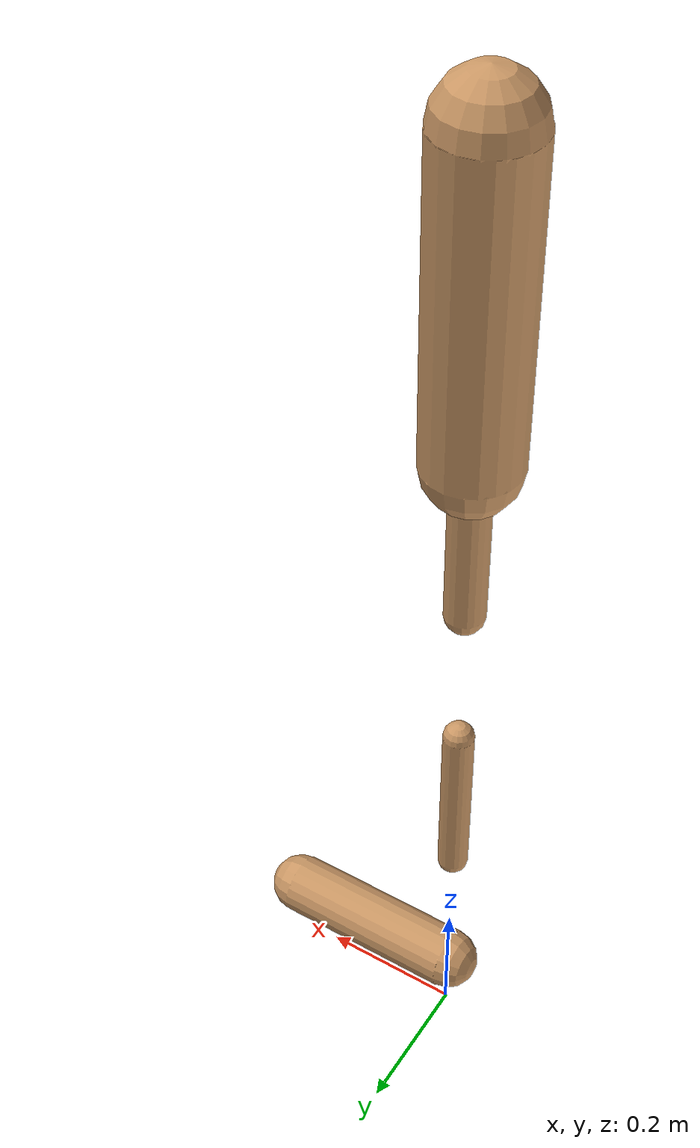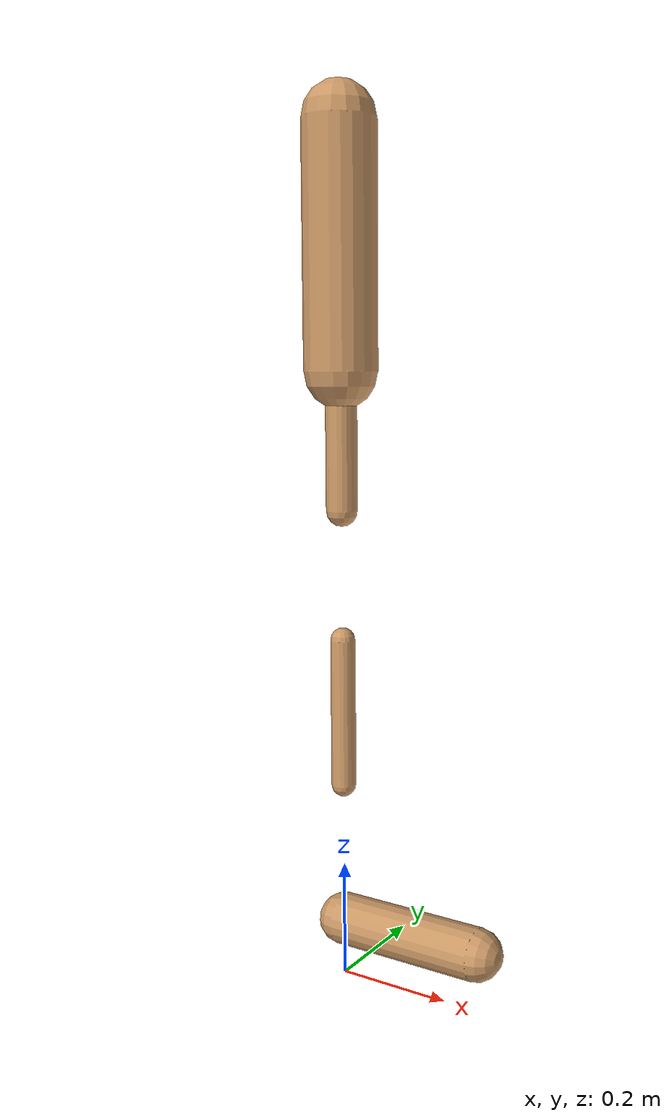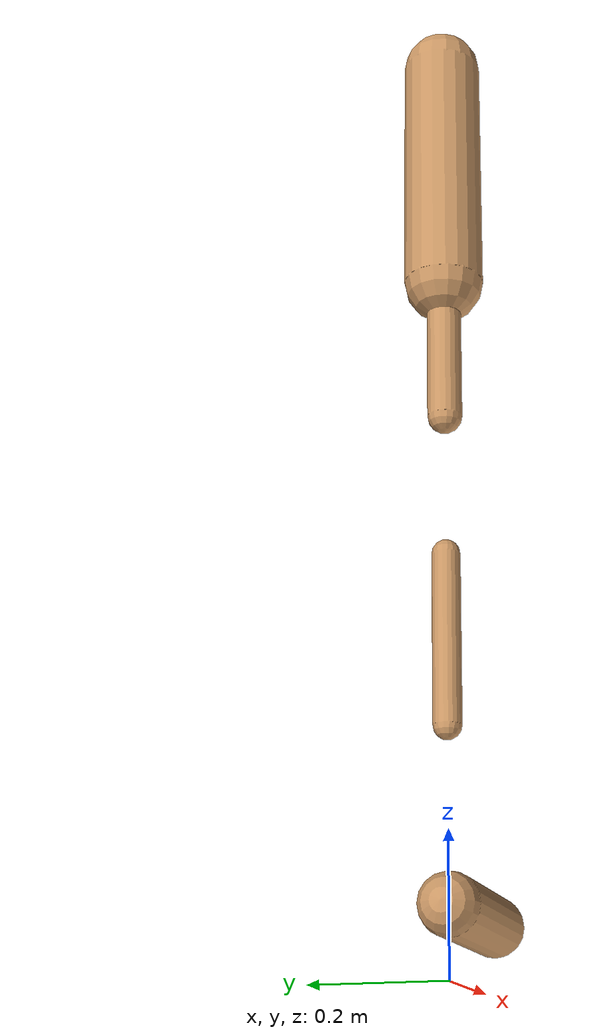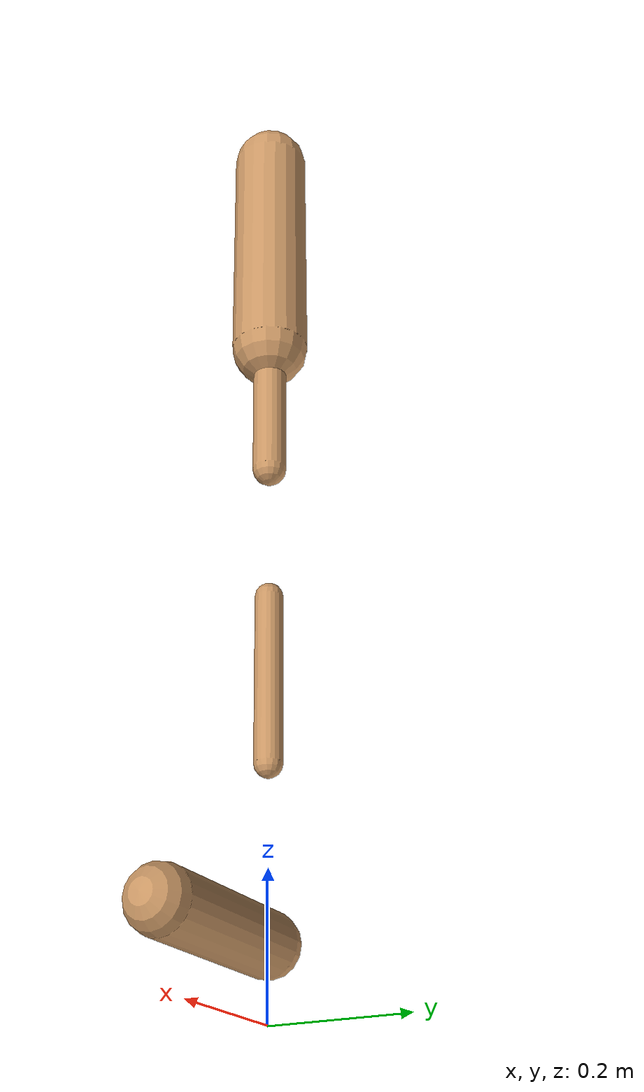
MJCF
<mujoco model="walker2d">
  <compiler angle="degree" coordinate="global" inertiafromgeom="true" />
  <default>
    <joint armature="0.01" damping=".1" limited="true" />
    <geom conaffinity="0" condim="3" contype="1" density="1000" friction="0.8 .1 .1" rgba="0.8 0.6 .4 1" />
  </default>
  <option integrator="RK4" timestep="0.002" />
  <worldbody>

    <body name="torso" pos="0 0 -0.4657585334455957">
      <joint armature="0" axis="1 0 0" damping="0" limited="false" name="ignorex" pos="0 0 0" stiffness="0" type="slide" />
      <joint armature="0" axis="0 0 1" damping="0" limited="false" name="ignorez" pos="0 0 0" ref="1.25" stiffness="0" type="slide" />
      <joint armature="0" axis="0 1 0" damping="0" limited="false" name="ignorey" pos="0 0 0" stiffness="0" type="hinge" />
      <geom fromto="0 0 1.45 0 0 1.05" name="torso_geom" size="0.06145492329358076" type="capsule" />
      <body name="thigh">
        <joint axis="0 -1 0" name="thigh_joint" pos="0 0 1.05" range="-150 0" type="hinge" />
        <geom fromto="0.0 0.0 1.05 0.0 0.0 0.8206224632110717" name="thigh_geom" size="0.02635142491261345" type="capsule" />
        <body name="leg" pos="0.0 0.0 0.2206224632110717">
          <joint axis="0 -1 0" name="leg_joint" pos="0 0 0.6" range="-150 0" type="hinge" />
          <geom fromto="0.0 0.0 0.6 0.0 0.0 0.3451360702345241" name="leg_geom" size="0.021081139930090757" type="capsule" />
          <body name="foot" pos="0.0 0.0 0.24513607023452408">
            <joint axis="0 -1 0" name="foot_joint" pos="0 0 0.1" range="-45 45" type="hinge" />
            <geom fromto="-0.0 0.0 0.1 0.2609226693029864 0.0 0.1" name="foot_geom" size="0.04416644735677682" type="capsule" />
          </body>
        </body>
      </body>

      <body name="thigh_left">
        <joint axis="0 -1 0" name="thigh_left_joint" pos="0 0 1.05" range="-150 0" type="hinge" />
        <geom fromto="0.0 0.0 1.05 0.0 0.0 0.8206224632110717" name="thigh_left_geom" rgba=".7 .3 .6 1" size="0.02635142491261345" type="capsule" />
        <body name="leg_left" pos="0.0 0.0 0.2206224632110717">
          <joint axis="0 -1 0" name="leg_left_joint" pos="0 0 0.6" range="-150 0" type="hinge" />
          <geom fromto="0.0 0.0 0.6 0.0 0.0 0.3451360702345241" name="leg_left_geom" rgba=".7 .3 .6 1" size="0.021081139930090757" type="capsule" />
          <body name="foot_left" pos="0.0 0.0 0.24513607023452408">
            <joint axis="0 -1 0" name="foot_left_joint" pos="0 0 0.1" range="-45 45" type="hinge" />
            <geom fromto="-0.0 0.0 0.1 0.2609226693029864 0.0 0.1" name="foot_left_geom" rgba=".7 .3 .6 1" size="0.04416644735677682" type="capsule" />
          </body>
        </body>
      </body>
    </body>
  </worldbody>
  <actuator>

    <motor ctrllimited="true" ctrlrange="-1.0 1.0" gear="100" joint="thigh_joint" />
    <motor ctrllimited="true" ctrlrange="-1.0 1.0" gear="100" joint="leg_joint" />
    <motor ctrllimited="true" ctrlrange="-1.0 1.0" gear="100" joint="foot_joint" />
    <motor ctrllimited="true" ctrlrange="-1.0 1.0" gear="100" joint="thigh_left_joint" />
    <motor ctrllimited="true" ctrlrange="-1.0 1.0" gear="100" joint="leg_left_joint" />
    <motor ctrllimited="true" ctrlrange="-1.0 1.0" gear="100" joint="foot_left_joint" />

  </actuator>
</mujoco>
